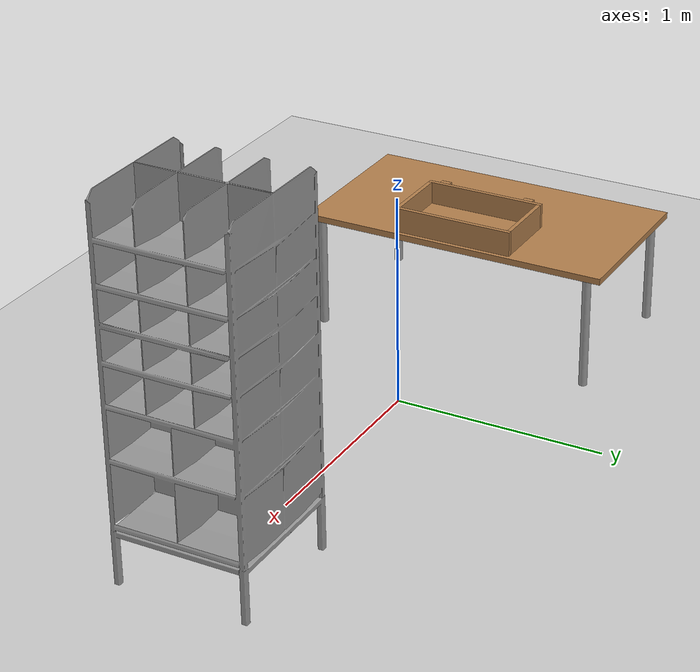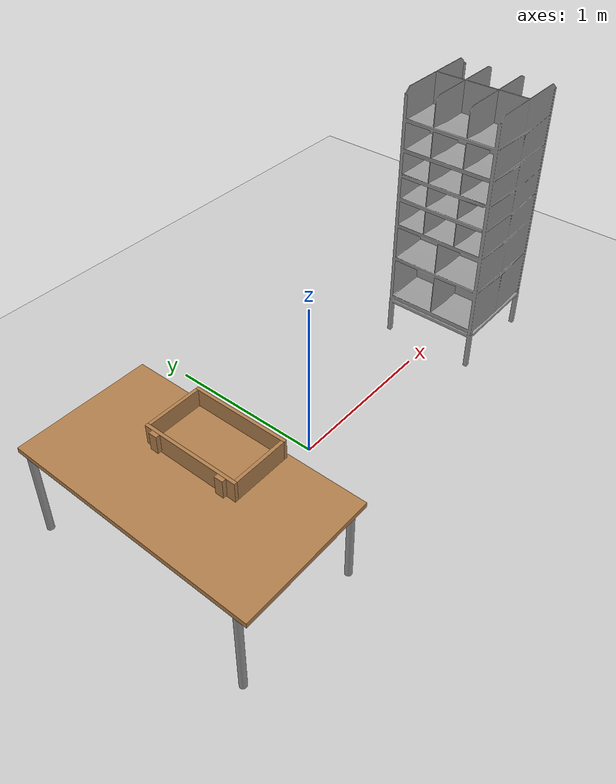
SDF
<sdf version="1.3">
 <world name="apc_world">
  <include><uri>model://sun</uri></include>
  <include><uri>model://ground_plane</uri></include>
  <include><uri>model://kiva_pod</uri><name>shelf_1</name><pose>1.5 0 0 0 0 1.5708</pose></include>
  <include><uri>model://table_small</uri><name>table_1</name><pose>-0.9 0 0 0 0 1.5708</pose></include>
  <include><uri>model://wooden_bin</uri><name>bin_1</name><pose>-0.9 0 0.62 0 -1.5708 3.1416</pose></include>
 </world>
</sdf>

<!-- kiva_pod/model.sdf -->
<sdf version="1.4">
  <model name="Amazon Pod">
    <link name="pod_link">
      <inertial>
        <pose>0.0 0.0 1.2045 0 0 0</pose>
        <mass>76.26</mass>
        <inertia>
          <ixx>47</ixx>
          <ixy>-0.003456</ixy>
          <ixz>0.001474</ixz>
          <izz>13.075</izz>
          <iyz>-0.014439</iyz>
          <iyy>47</iyy>
        </inertia>
      </inertial>

      <visual name="pod_visual">
        <pose>0 0 0 1.5707 0 0 </pose>
        <material>
          <script>
            <uri>file://media/materials/scripts/gazebo.material</uri>
            <name>Gazebo/Grey</name>
          </script>
        </material>
        <geometry>
          <mesh>
			<scale>0.70 0.70 0.70</scale>
            <uri>model://kiva_pod/meshes/pod_lowres.stl</uri>
          </mesh>
        </geometry>
      </visual>

      <collision name="pod_collision">
        <pose>0 0 0 1.5707 0 0</pose>
        <geometry>
          <mesh>
			<scale>0.70 0.70 0.70</scale>
            <uri>model://kiva_pod/meshes/pod_lowres.stl</uri>
          </mesh>
        </geometry>
        <surface>
          <friction>
            <ode>
              <mu>0.8</mu>
              <mu2>0.8</mu2>
              <fdir1>0.0 0.0 0.0</fdir1>
              <slip1>1.0</slip1>
              <slip2>1.0</slip2>
            </ode>
          </friction>
        </surface>
      </collision>

    </link>
  </model>
</sdf>

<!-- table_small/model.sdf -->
<sdf version="1.5">
  <model name="table_small">
    <static>true</static>
    <link name="link">
      <collision name="surface">
        <pose>0 0 0.55 0 0 0</pose>
        <geometry>
          <box>
            <size>1.5 0.8 0.03</size>
          </box>
        </geometry>
        <surface>
          <friction>
            <ode>
              <mu>0.6</mu>
              <mu2>0.6</mu2>
            </ode>
          </friction>
        </surface>
      </collision>
      <visual name="visual1">
        <pose>0 0 0.55 0 0 0</pose>
        <geometry>
          <box>
            <size>1.5 0.8 0.03</size>
          </box>
        </geometry>
        <material>
          <script>
            <uri>file://media/materials/scripts/gazebo.material</uri>
            <name>Gazebo/Wood</name>
          </script>
        </material>
      </visual>
      <collision name="front_left_leg">
        <pose>0.68 0.38 0.28 0 0 0</pose>
        <geometry>
          <cylinder>
            <radius>0.02</radius>
            <length>0.55</length>
          </cylinder>
        </geometry>
      </collision>
      <visual name="front_left_leg">
        <pose>0.68 0.38 0.28 0 0 0</pose>
        <geometry>
          <cylinder>
            <radius>0.02</radius>
            <length>0.55</length>
          </cylinder>
        </geometry>
        <material>
          <script>
            <uri>file://media/materials/scripts/gazebo.material</uri>
            <name>Gazebo/Grey</name>
          </script>
        </material>
      </visual>
      <collision name="front_right_leg">
        <pose>0.68 -0.38 0.28 0 0 0</pose>
        <geometry>
          <cylinder>
            <radius>0.02</radius>
            <length>0.55</length>
          </cylinder>
        </geometry>
      </collision>
      <visual name="front_right_leg">
        <pose>0.68 -0.38 0.28 0 0 0</pose>
        <geometry>
          <cylinder>
            <radius>0.02</radius>
            <length>0.55</length>
          </cylinder>
        </geometry>
        <material>
          <script>
            <uri>file://media/materials/scripts/gazebo.material</uri>
            <name>Gazebo/Grey</name>
          </script>
        </material>
      </visual>
      <collision name="back_right_leg">
        <pose>-0.68 -0.38 0.28 0 0 0</pose>
        <geometry>
          <cylinder>
            <radius>0.02</radius>
            <length>0.55</length>
          </cylinder>
        </geometry>
      </collision>
      <visual name="back_right_leg">
        <pose>-0.68 -0.38 0.28 0 0 0</pose>
        <geometry>
          <cylinder>
            <radius>0.02</radius>
            <length>0.55</length>
          </cylinder>
        </geometry>
        <material>
          <script>
            <uri>file://media/materials/scripts/gazebo.material</uri>
            <name>Gazebo/Grey</name>
          </script>
        </material>
      </visual>
      <collision name="back_left_leg">
        <pose>-0.68 0.38 0.28 0 0 0</pose>
        <geometry>
          <cylinder>
            <radius>0.02</radius>
            <length>0.55</length>
          </cylinder>
        </geometry>
      </collision>
      <visual name="back_left_leg">
        <pose>-0.68 0.38 0.28 0 0 0</pose>
        <geometry>
          <cylinder>
            <radius>0.02</radius>
            <length>0.55</length>
          </cylinder>
        </geometry>
        <material>
          <script>
            <uri>file://media/materials/scripts/gazebo.material</uri>
            <name>Gazebo/Grey</name>
          </script>
        </material>
      </visual>
    </link>
  </model>
</sdf>

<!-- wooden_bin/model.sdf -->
<sdf version="1.5">
  <model name="wooden_bin">
    <link name="base">

      <pose>0 0 0.024  0 0 0</pose>
      <inertial>
        <pose>-0.02218446808213116 0.0 0.17159249678128843  0 0 0</pose>
        <mass>3.9626366887499986</mass>
        <inertia>
          <ixx>0.2135364168029657</ixx>
          <ixy>0.0</ixy>
          <ixz>0.0007793770806417083</ixz>
          <iyy>0.07089428398599372</iyy>
          <iyz>0.0</iyz>
          <izz>0.15460392299497075</izz>
        </inertia>
      </inertial>

      <collision name='collision_back'>
        <pose>-0.053975 0 0.17779999999999999  0 0 0</pose>
        <geometry>
          <box>
            <size>0.019049999999999997 0.5460999999999999 0.3175</size>
          </box>
        </geometry>
        <surface>

          <contact>
            <ode>
              <max_vel>0.1</max_vel>
              <min_depth>0.001</min_depth>
            </ode>
          </contact>
        </surface>
      </collision>
      <visual name='visual_back'>
        <pose>-0.053975 0 0.17779999999999999  0 0 0</pose>
        <geometry>
          <box>
            <size>0.019049999999999997 0.5460999999999999 0.3175</size>
          </box>
        </geometry>
        <material>
          <script>
            <uri>file://media/materials/scripts/gazebo.material</uri>
            <name>Gazebo/Wood</name>
          </script>
        </material>
      </visual>

      <collision name='collision_bottom'>
        <pose>0 0 0.009524999999999999  0 0 0</pose>
        <geometry>
          <box>
            <size>0.127 0.5841999999999999 0.019049999999999997</size>
          </box>
        </geometry>
        <surface>

          <contact>
            <ode>
              <max_vel>0.1</max_vel>
              <min_depth>0.001</min_depth>
            </ode>
          </contact>
        </surface>
      </collision>
      <visual name='visual_bottom'>
        <pose>0 0 0.009524999999999999  0 0 0</pose>
        <geometry>
          <box>
            <size>0.127 0.5841999999999999 0.019049999999999997</size>
          </box>
        </geometry>
        <material>
          <script>
            <uri>file://media/materials/scripts/gazebo.material</uri>
            <name>Gazebo/Wood</name>
          </script>
        </material>
      </visual>

      <collision name='collision_top'>
        <pose>0 0 0.34607499999999997  0 0 0</pose>
        <geometry>
          <box>
            <size>0.127 0.5841999999999999 0.019049999999999997</size>
          </box>
        </geometry>
        <surface>

          <contact>
            <ode>
              <max_vel>0.1</max_vel>
              <min_depth>0.001</min_depth>
            </ode>
          </contact>
        </surface>
      </collision>
      <visual name='visual_top'>
        <pose>0 0 0.34607499999999997  0 0 0</pose>
        <geometry>
          <box>
            <size>0.127 0.5841999999999999 0.019049999999999997</size>
          </box>
        </geometry>
        <material>
          <script>
            <uri>file://media/materials/scripts/gazebo.material</uri>
            <name>Gazebo/Wood</name>
          </script>
        </material>
      </visual>

      <collision name='collision_left'>
        <pose>0 -0.28257499999999997 0.17779999999999999  0 0 0</pose>
        <geometry>
          <box>
            <size>0.127 0.019049999999999997 0.3175</size>
          </box>
        </geometry>
        <surface>

          <contact>
            <ode>
              <max_vel>0.1</max_vel>
              <min_depth>0.001</min_depth>
            </ode>
          </contact>
        </surface>
      </collision>
      <visual name='visual_left'>
        <pose>0 -0.28257499999999997 0.17779999999999999  0 0 0</pose>
        <geometry>
          <box>
            <size>0.127 0.019049999999999997 0.3175</size>
          </box>
        </geometry>
        <material>
          <script>
            <uri>file://media/materials/scripts/gazebo.material</uri>
            <name>Gazebo/Wood</name>
          </script>
        </material>
      </visual>

      <collision name='collision_right'>
        <pose>0 0.28257499999999997 0.17779999999999999  0 0 0</pose>
        <geometry>
          <box>
            <size>0.127 0.019049999999999997 0.3175</size>
          </box>
        </geometry>
        <surface>

          <contact>
            <ode>
              <max_vel>0.1</max_vel>
              <min_depth>0.001</min_depth>
            </ode>
          </contact>
        </surface>
      </collision>
      <visual name='visual_right'>
        <pose>0 0.28257499999999997 0.17779999999999999  0 0 0</pose>
        <geometry>
          <box>
            <size>0.127 0.019049999999999997 0.3175</size>
          </box>
        </geometry>
        <material>
          <script>
            <uri>file://media/materials/scripts/gazebo.material</uri>
            <name>Gazebo/Wood</name>
          </script>
        </material>
      </visual>

      <collision name='collision_block_left'>
        <pose>0.009500000000000001 -0.21509999999999996 -0.012  0 0 0</pose>
        <geometry>
          <box>
            <size>0.108 0.05 0.024</size>
          </box>
        </geometry>
        <surface>

          <contact>
            <ode>
              <max_vel>0.1</max_vel>
              <min_depth>0.001</min_depth>
            </ode>
          </contact>
        </surface>
      </collision>
      <visual name='visual_block_left'>
        <pose>0.009500000000000001 -0.21509999999999996 -0.012  0 0 0</pose>
        <geometry>
          <box>
            <size>0.108 0.05 0.024</size>
          </box>
        </geometry>
        <material>
          <script>
            <uri>file://media/materials/scripts/gazebo.material</uri>
            <name>Gazebo/Wood</name>
          </script>
        </material>
      </visual>

      <collision name='collision_block_right'>
        <pose>0.009500000000000001 0.21509999999999996 -0.012  0 0 0</pose>
        <geometry>
          <box>
            <size>0.108 0.05 0.024</size>
          </box>
        </geometry>
        <surface>

          <contact>
            <ode>
              <max_vel>0.1</max_vel>
              <min_depth>0.001</min_depth>
            </ode>
          </contact>
        </surface>
      </collision>
      <visual name='visual_block_right'>
        <pose>0.009500000000000001 0.21509999999999996 -0.012  0 0 0</pose>
        <geometry>
          <box>
            <size>0.108 0.05 0.024</size>
          </box>
        </geometry>
        <material>
          <script>
            <uri>file://media/materials/scripts/gazebo.material</uri>
            <name>Gazebo/Wood</name>
          </script>
        </material>
      </visual>

    </link>

  </model>
</sdf>
